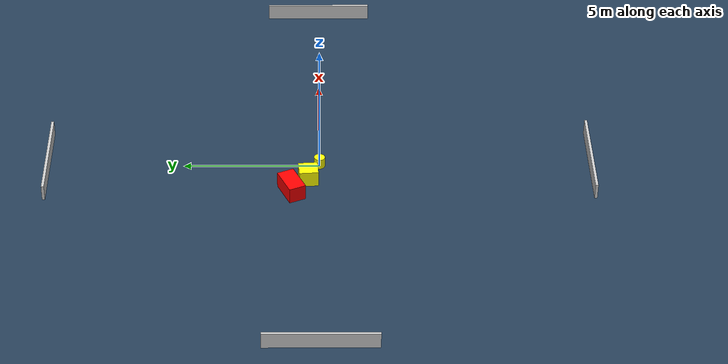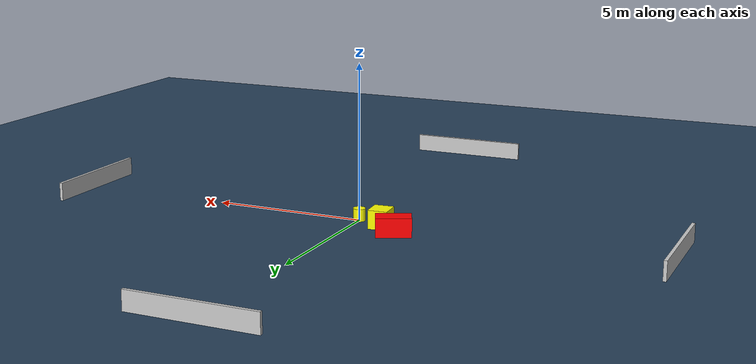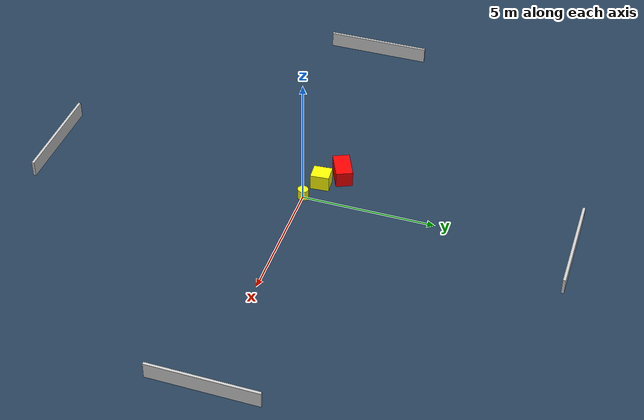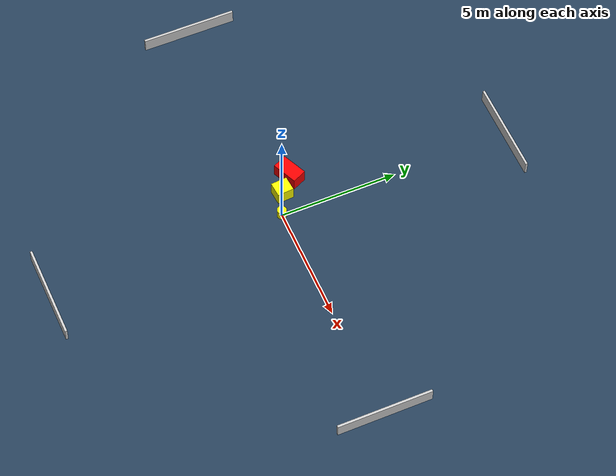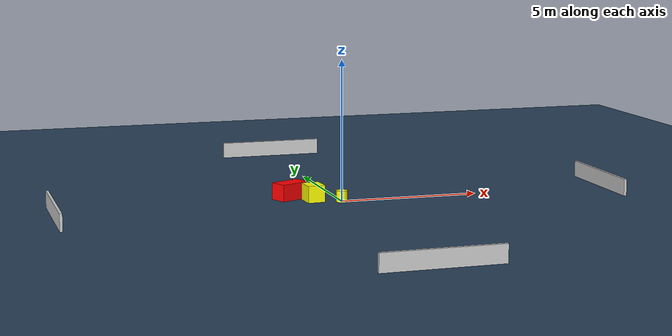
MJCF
<?xml version="1.0" ?>
<mujoco model="generated_environment">
  <option timestep="0.01" integrator="RK4" cone="elliptic"/>
  <default>
    <geom density="1"/>
  </default>
  <asset>
    <texture builtin="gradient" height="3072" name="skybox" rgb1="0.3 0.5 0.7" rgb2="0 0 0" type="skybox" width="512"/>
    <texture builtin="checker" height="300" name="groundplane" rgb1="0.2 0.3 0.4" rgb2="0.1 0.2 0.3" type="2d" width="300"/>
    <material name="groundplane" reflectance="0.2" texrepeat="5 5" texture="groundplane"/>
  </asset>
  <worldbody>
    <light dir="0 0 -1" directional="true" pos="0 0 1.5"/>
    <geom condim="3" friction="0.5 0.005 0.001" material="groundplane" name="floor" pos="0 0 0" size="0 0 0.05" type="plane"/>
    <body name="walls">
      <geom name="wall_1" condim="4" pos="-10.0 0.0 0.3" rgba="0.800000011920929 0.800000011920929 0.800000011920929 1.0" size="0.05 2.0 0.3" type="box"/>
      <geom name="wall_2" condim="4" pos="10.0 0.0 0.3" rgba="0.800000011920929 0.800000011920929 0.800000011920929 1.0" size="0.05 2.0 0.3" type="box"/>
      <geom name="wall_3" condim="4" pos="0.0 -10.0 0.3" rgba="0.800000011920929 0.800000011920929 0.800000011920929 1.0" size="2.0 0.05 0.3" type="box"/>
      <geom name="wall_4" condim="4" pos="0.0 10.0 0.3" rgba="0.800000011920929 0.800000011920929 0.800000011920929 1.0" size="2.0 0.05 0.3" type="box"/>
    </body>
    <body name="robot">
      <joint name="joint_x" type="slide" pos="0 0 0" axis="1 0 0"/>
      <joint name="joint_y" type="slide" pos="0 0 0" axis="0 1 0"/>
      <geom name="robot" type="cylinder" pos="0.0 0.0 0.2" size="0.2 0.2 0.0" mass="5.0" friction="1.0 0.005 0.0001" condim="4" rgba="1.0 1.0 0.0 1.0"/>
    </body>
    <body name="obstacle_1_movable">
      <geom name="obstacle_1_movable" condim="4" pos="-0.9185431534360825 0.4133291514742171 0.3" euler="0 0 94.31078512173241" friction="0.0 0.005 0.001" rgba="1.0 1.0 0.0 1.0" size="0.3488303708705893 0.31475446961111325 0.3" type="box" mass="0.1"/>
      <joint type="free"/>
    </body>
    <body name="obstacle_2_static">
      <geom name="obstacle_2_static" condim="4" pos="-1.6018955394614967 1.0281093258246992 0.3" euler="0 0 24.166227479555317" friction="0.0 0.005 0.001" rgba="1.0 0.0 0.0 1.0" size="0.5538665355619737 0.3168858223882907 0.3" type="box"/>
    </body>
  </worldbody>
  <actuator>
    <motor name="actuator_x" joint="joint_x" gear="1" ctrlrange="-1 1"/>
    <motor name="actuator_y" joint="joint_y" gear="1" ctrlrange="-1 1"/>
  </actuator>
</mujoco>
